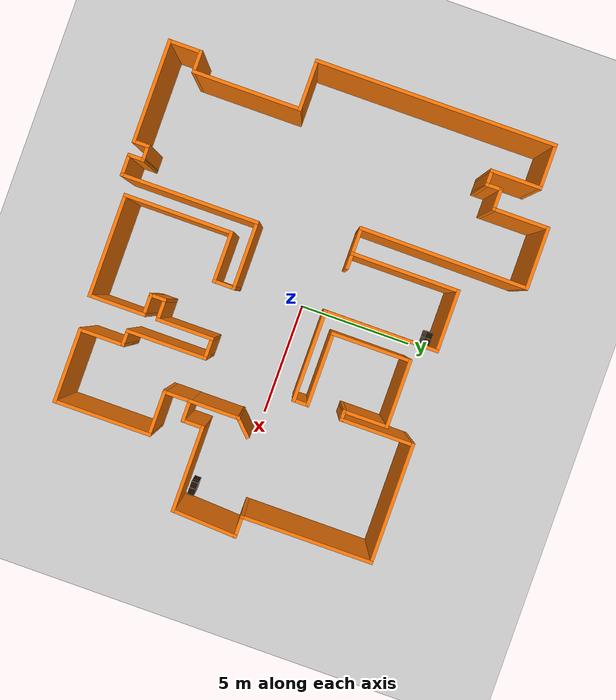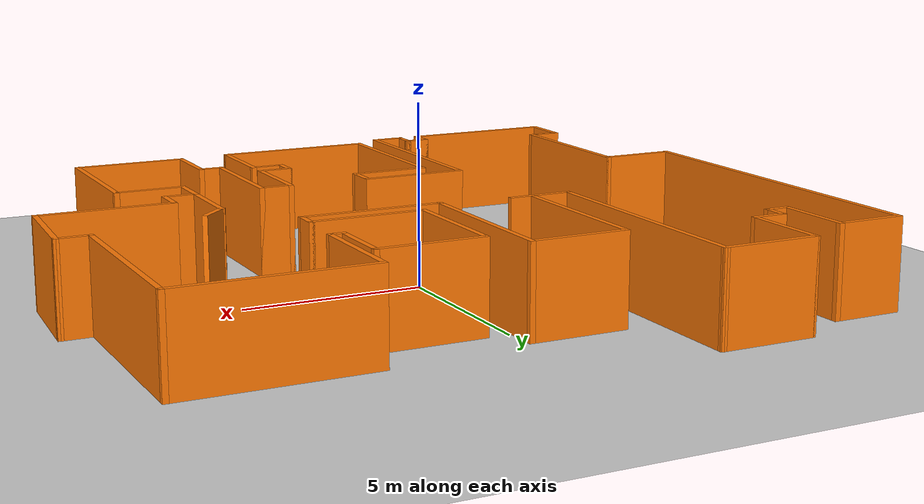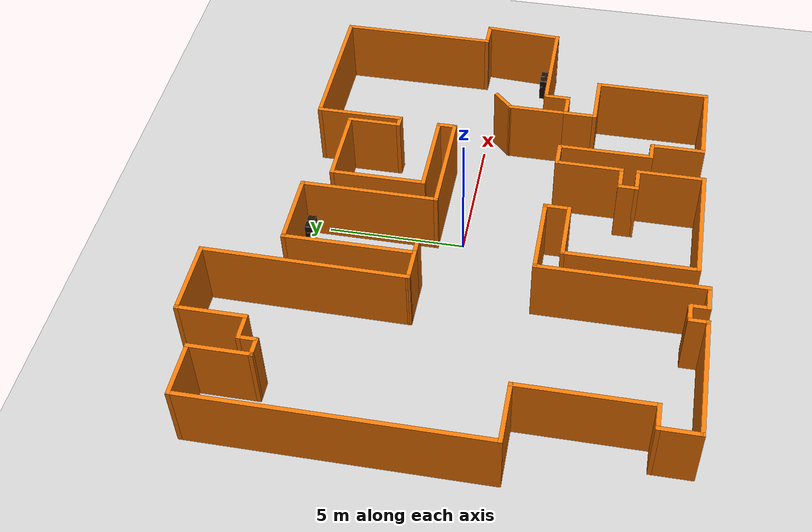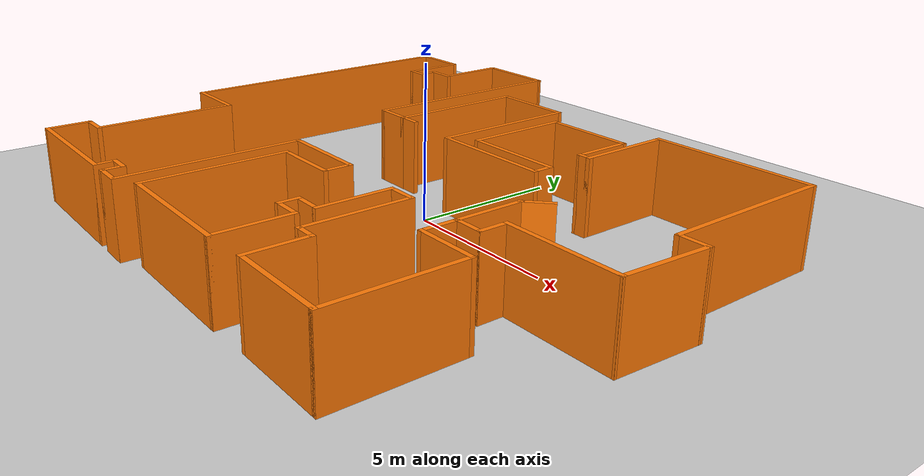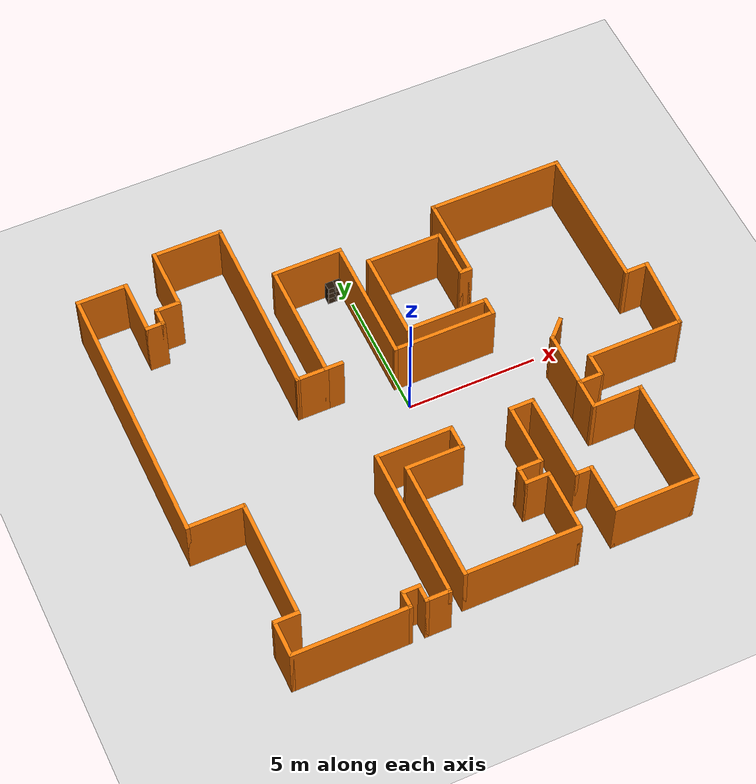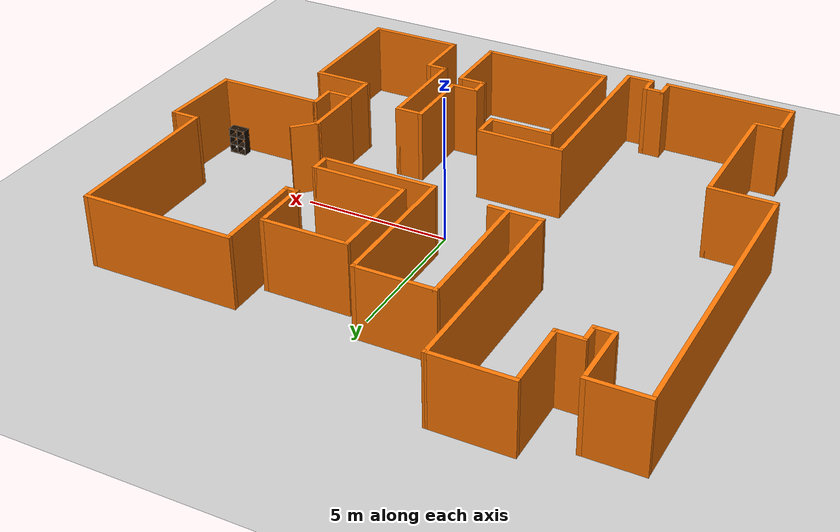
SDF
<sdf version="1.6">
 <world name="default">
  <light name="sun" type="directional">
   <pose>0 0 10 0 -0 0</pose>
   <diffuse>0.8 0.8 0.8 1</diffuse>
   <specular>0.2 0.2 0.2 1</specular>
   <attenuation>
    <range>1000</range>
    <constant>0.9</constant>
    <linear>0.01</linear>
    <quadratic>0.001</quadratic>
   </attenuation>
   <direction>-0.5 0.1 -0.9</direction>
  </light>
  <model name="ground_plane">
   <static>1</static>
   <link name="link">
    <collision name="collision">
     <geometry><plane><normal>0 0 1</normal><size>100 100</size></plane></geometry>
     <surface>
      <contact><collide_bitmask>65535</collide_bitmask></contact>
      <friction><ode><mu>100</mu><mu2>50</mu2></ode></friction>
     </surface>
    </collision>
    <visual name="visual">
     <cast_shadows>0</cast_shadows>
     <geometry><plane><normal>0 0 1</normal><size>100 100</size></plane></geometry>
     <material>
      <script><uri>file://media/materials/scripts/gazebo.material</uri><name>Gazebo/Grey</name></script>
     </material>
    </visual>
   </link>
  </model>
  <gravity>0 0 -9.8</gravity>
  <magnetic_field>6e-06 2.3e-05 -4.2e-05</magnetic_field>
  <atmosphere type="adiabatic"/>
  <physics name="default_physics" default="0" type="ode">
   <max_step_size>0.001</max_step_size>
   <real_time_factor>1</real_time_factor>
   <real_time_update_rate>1000</real_time_update_rate>
  </physics>
  <scene><ambient>0.4 0.4 0.4 1</ambient><background>0.7 0.7 0.7 1</background><shadows>1</shadows></scene>
  <audio><device>default</device></audio>
  <spherical_coordinates>
   <surface_model>EARTH_WGS84</surface_model>
   <latitude_deg>0</latitude_deg>
   <longitude_deg>0</longitude_deg>
   <elevation>0</elevation>
   <heading_deg>0</heading_deg>
  </spherical_coordinates>
  <model name="map_126">
   <pose>0.039497 -0.148773 0 0 -0 0</pose>
   <link name="Wall_10">
    <collision name="Wall_10_Collision">
     <geometry><box><size>2.75 0.15 2.5</size></box></geometry>
     <pose>0 0 1.25 0 -0 0</pose>
    </collision>
    <visual name="Wall_10_Visual">
     <pose>0 0 1.25 0 -0 0</pose>
     <geometry><box><size>2.75 0.15 2.5</size></box></geometry>
     <material>
      <script><uri>file://media/materials/scripts/gazebo.material</uri><name>Gazebo/Grey</name></script>
      <ambient>0.996078 0.47451 0.0196078 1</ambient>
     </material>
     <meta><layer>0</layer></meta>
    </visual>
    <pose>-5.12699 8.57474 0 0 -0 0</pose>
   </link>
   <link name="Wall_12">
    <collision name="Wall_12_Collision">
     <geometry><box><size>2.5 0.15 2.5</size></box></geometry>
     <pose>0 0 1.25 0 -0 0</pose>
    </collision>
    <visual name="Wall_12_Visual">
     <pose>0 0 1.25 0 -0 0</pose>
     <geometry><box><size>2.5 0.15 2.5</size></box></geometry>
     <material>
      <script><uri>file://media/materials/scripts/gazebo.material</uri><name>Gazebo/Grey</name></script>
      <ambient>0.996078 0.47451 0.0196078 1</ambient>
     </material>
     <meta><layer>0</layer></meta>
    </visual>
    <pose>-6.42699 7.39974 0 0 -0 -1.5708</pose>
   </link>
   <link name="Wall_13">
    <collision name="Wall_13_Collision">
     <geometry><box><size>1 0.15 2.5</size></box></geometry>
     <pose>0 0 1.25 0 -0 0</pose>
    </collision>
    <visual name="Wall_13_Visual">
     <pose>0 0 1.25 0 -0 0</pose>
     <geometry><box><size>1 0.15 2.5</size></box></geometry>
     <material>
      <script><uri>file://media/materials/scripts/gazebo.material</uri><name>Gazebo/Grey</name></script>
      <ambient>0.996078 0.47451 0.0196078 1</ambient>
     </material>
     <meta><layer>0</layer></meta>
    </visual>
    <pose>-6.85199 6.22474 0 0 -0 3.14159</pose>
   </link>
   <link name="Wall_14">
    <collision name="Wall_14_Collision">
     <geometry><box><size>0.75 0.15 2.5</size></box></geometry>
     <pose>0 0 1.25 0 -0 0</pose>
    </collision>
    <visual name="Wall_14_Visual">
     <pose>0 0 1.25 0 -0 0</pose>
     <geometry><box><size>0.75 0.15 2.5</size></box></geometry>
     <material>
      <script><uri>file://media/materials/scripts/gazebo.material</uri><name>Gazebo/Grey</name></script>
      <ambient>0.996078 0.47451 0.0196078 1</ambient>
     </material>
     <meta><layer>0</layer></meta>
    </visual>
    <pose>-7.27699 5.92474 0 0 -0 -1.5708</pose>
   </link>
   <link name="Wall_15">
    <collision name="Wall_15_Collision">
     <geometry><box><size>0.75 0.15 2.5</size></box></geometry>
     <pose>0 0 1.25 0 -0 0</pose>
    </collision>
    <visual name="Wall_15_Visual">
     <pose>0 0 1.25 0 -0 0</pose>
     <geometry><box><size>0.75 0.15 2.5</size></box></geometry>
     <material>
      <script><uri>file://media/materials/scripts/gazebo.material</uri><name>Gazebo/Grey</name></script>
      <ambient>0.996078 0.47451 0.0196078 1</ambient>
     </material>
     <meta><layer>0</layer></meta>
    </visual>
    <pose>-7.57699 5.62474 0 0 -0 3.14159</pose>
   </link>
   <link name="Wall_16">
    <collision name="Wall_16_Collision">
     <geometry><box><size>2.25 0.15 2.5</size></box></geometry>
     <pose>0 0 1.25 0 -0 0</pose>
    </collision>
    <visual name="Wall_16_Visual">
     <pose>0 0 1.25 0 -0 0</pose>
     <geometry><box><size>2.25 0.15 2.5</size></box></geometry>
     <material>
      <script><uri>file://media/materials/scripts/gazebo.material</uri><name>Gazebo/Grey</name></script>
      <ambient>0.996078 0.47451 0.0196078 1</ambient>
     </material>
     <meta><layer>0</layer></meta>
    </visual>
    <pose>-7.87699 6.67474 0 0 -0 1.5708</pose>
   </link>
   <link name="Wall_17">
    <collision name="Wall_17_Collision">
     <geometry><box><size>2 0.15 2.5</size></box></geometry>
     <pose>0 0 1.25 0 -0 0</pose>
    </collision>
    <visual name="Wall_17_Visual">
     <pose>0 0 1.25 0 -0 0</pose>
     <geometry><box><size>2 0.15 2.5</size></box></geometry>
     <material>
      <script><uri>file://media/materials/scripts/gazebo.material</uri><name>Gazebo/Grey</name></script>
      <ambient>0.996078 0.47451 0.0196078 1</ambient>
     </material>
     <meta><layer>0</layer></meta>
    </visual>
    <pose>-8.80199 7.72474 0 0 -0 3.14159</pose>
   </link>
   <link name="Wall_18">
    <collision name="Wall_18_Collision">
     <geometry><box><size>10.5 0.15 2.5</size></box></geometry>
     <pose>0 0 1.25 0 -0 0</pose>
    </collision>
    <visual name="Wall_18_Visual">
     <pose>0 0 1.25 0 -0 0</pose>
     <geometry><box><size>10.5 0.15 2.5</size></box></geometry>
     <material>
      <script><uri>file://media/materials/scripts/gazebo.material</uri><name>Gazebo/Grey</name></script>
      <ambient>0.996078 0.47451 0.0196078 1</ambient>
     </material>
     <meta><layer>0</layer></meta>
    </visual>
    <pose>-9.72699 2.54974 0 0 -0 -1.5708</pose>
   </link>
   <link name="Wall_19">
    <collision name="Wall_19_Collision">
     <geometry><box><size>2.25 0.15 2.5</size></box></geometry>
     <pose>0 0 1.25 0 -0 0</pose>
    </collision>
    <visual name="Wall_19_Visual">
     <pose>0 0 1.25 0 -0 0</pose>
     <geometry><box><size>2.25 0.15 2.5</size></box></geometry>
     <material>
      <script><uri>file://media/materials/scripts/gazebo.material</uri><name>Gazebo/Grey</name></script>
      <ambient>0.996078 0.47451 0.0196078 1</ambient>
     </material>
     <meta><layer>0</layer></meta>
    </visual>
    <pose>-8.67699 -2.62526 0 0 -0 0</pose>
   </link>
   <link name="Wall_20">
    <collision name="Wall_20_Collision">
     <geometry><box><size>4.75 0.15 2.5</size></box></geometry>
     <pose>0 0 1.25 0 -0 0</pose>
    </collision>
    <visual name="Wall_20_Visual">
     <pose>0 0 1.25 0 -0 0</pose>
     <geometry><box><size>4.75 0.15 2.5</size></box></geometry>
     <material>
      <script><uri>file://media/materials/scripts/gazebo.material</uri><name>Gazebo/Grey</name></script>
      <ambient>0.996078 0.47451 0.0196078 1</ambient>
     </material>
     <meta><layer>0</layer></meta>
    </visual>
    <pose>-7.62699 -4.92526 0 0 -0 -1.5708</pose>
   </link>
   <link name="Wall_21">
    <collision name="Wall_21_Collision">
     <geometry><box><size>1 0.15 2.5</size></box></geometry>
     <pose>0 0 1.25 0 -0 0</pose>
    </collision>
    <visual name="Wall_21_Visual">
     <pose>0 0 1.25 0 -0 0</pose>
     <geometry><box><size>1 0.15 2.5</size></box></geometry>
     <material>
      <script><uri>file://media/materials/scripts/gazebo.material</uri><name>Gazebo/Grey</name></script>
      <ambient>0.996078 0.47451 0.0196078 1</ambient>
     </material>
     <meta><layer>0</layer></meta>
    </visual>
    <pose>-8.05199 -7.22526 0 0 -0 3.14159</pose>
   </link>
   <link name="Wall_22">
    <collision name="Wall_22_Collision">
     <geometry><box><size>1.5 0.15 2.5</size></box></geometry>
     <pose>0 0 1.25 0 -0 0</pose>
    </collision>
    <visual name="Wall_22_Visual">
     <pose>0 0 1.25 0 -0 0</pose>
     <geometry><box><size>1.5 0.15 2.5</size></box></geometry>
     <material>
      <script><uri>file://media/materials/scripts/gazebo.material</uri><name>Gazebo/Grey</name></script>
      <ambient>0.996078 0.47451 0.0196078 1</ambient>
     </material>
     <meta><layer>0</layer></meta>
    </visual>
    <pose>-8.47699 -7.90026 0 0 -0 -1.5708</pose>
   </link>
   <link name="Wall_23">
    <collision name="Wall_23_Collision">
     <geometry><box><size>4.5 0.15 2.5</size></box></geometry>
     <pose>0 0 1.25 0 -0 0</pose>
    </collision>
    <visual name="Wall_23_Visual">
     <pose>0 0 1.25 0 -0 0</pose>
     <geometry><box><size>4.5 0.15 2.5</size></box></geometry>
     <material>
      <script><uri>file://media/materials/scripts/gazebo.material</uri><name>Gazebo/Grey</name></script>
      <ambient>0.996078 0.47451 0.0196078 1</ambient>
     </material>
     <meta><layer>0</layer></meta>
    </visual>
    <pose>-6.30199 -8.57526 0 0 -0 0</pose>
   </link>
   <link name="Wall_24">
    <collision name="Wall_24_Collision">
     <geometry><box><size>0.75 0.15 2.5</size></box></geometry>
     <pose>0 0 1.25 0 -0 0</pose>
    </collision>
    <visual name="Wall_24_Visual">
     <pose>0 0 1.25 0 -0 0</pose>
     <geometry><box><size>0.75 0.15 2.5</size></box></geometry>
     <material>
      <script><uri>file://media/materials/scripts/gazebo.material</uri><name>Gazebo/Grey</name></script>
      <ambient>0.996078 0.47451 0.0196078 1</ambient>
     </material>
     <meta><layer>0</layer></meta>
    </visual>
    <pose>-4.12699 -8.27526 0 0 -0 1.5708</pose>
   </link>
   <link name="Wall_25">
    <collision name="Wall_25_Collision">
     <geometry><box><size>0.75 0.15 2.5</size></box></geometry>
     <pose>0 0 1.25 0 -0 0</pose>
    </collision>
    <visual name="Wall_25_Visual">
     <pose>0 0 1.25 0 -0 0</pose>
     <geometry><box><size>0.75 0.15 2.5</size></box></geometry>
     <material>
      <script><uri>file://media/materials/scripts/gazebo.material</uri><name>Gazebo/Grey</name></script>
      <ambient>0.996078 0.47451 0.0196078 1</ambient>
     </material>
     <meta><layer>0</layer></meta>
    </visual>
    <pose>-3.82699 -7.97526 0 0 -0 0</pose>
   </link>
   <link name="Wall_26">
    <collision name="Wall_26_Collision">
     <geometry><box><size>0.75 0.15 2.5</size></box></geometry>
     <pose>0 0 1.25 0 -0 0</pose>
    </collision>
    <visual name="Wall_26_Visual">
     <pose>0 0 1.25 0 -0 0</pose>
     <geometry><box><size>0.75 0.15 2.5</size></box></geometry>
     <material>
      <script><uri>file://media/materials/scripts/gazebo.material</uri><name>Gazebo/Grey</name></script>
      <ambient>0.996078 0.47451 0.0196078 1</ambient>
     </material>
     <meta><layer>0</layer></meta>
    </visual>
    <pose>-3.52699 -8.27526 0 0 -0 -1.5708</pose>
   </link>
   <link name="Wall_27">
    <collision name="Wall_27_Collision">
     <geometry><box><size>1 0.15 2.5</size></box></geometry>
     <pose>0 0 1.25 0 -0 0</pose>
    </collision>
    <visual name="Wall_27_Visual">
     <pose>0 0 1.25 0 -0 0</pose>
     <geometry><box><size>1 0.15 2.5</size></box></geometry>
     <material>
      <script><uri>file://media/materials/scripts/gazebo.material</uri><name>Gazebo/Grey</name></script>
      <ambient>0.996078 0.47451 0.0196078 1</ambient>
     </material>
     <meta><layer>0</layer></meta>
    </visual>
    <pose>-3.10199 -8.57526 0 0 -0 0</pose>
   </link>
   <link name="Wall_28">
    <collision name="Wall_28_Collision">
     <geometry><box><size>6 0.15 2.5</size></box></geometry>
     <pose>0 0 1.25 0 -0 0</pose>
    </collision>
    <visual name="Wall_28_Visual">
     <pose>0 0 1.25 0 -0 0</pose>
     <geometry><box><size>6 0.15 2.5</size></box></geometry>
     <material>
      <script><uri>file://media/materials/scripts/gazebo.material</uri><name>Gazebo/Grey</name></script>
      <ambient>0.996078 0.47451 0.0196078 1</ambient>
     </material>
     <meta><layer>0</layer></meta>
    </visual>
    <pose>-2.67699 -5.65026 0 0 -0 1.5708</pose>
   </link>
   <link name="Wall_29">
    <collision name="Wall_29_Collision">
     <geometry><box><size>3 0.15 2.5</size></box></geometry>
     <pose>0 0 1.25 0 -0 0</pose>
    </collision>
    <visual name="Wall_29_Visual">
     <pose>0 0 1.25 0 -0 0</pose>
     <geometry><box><size>3 0.15 2.5</size></box></geometry>
     <material>
      <script><uri>file://media/materials/scripts/gazebo.material</uri><name>Gazebo/Grey</name></script>
      <ambient>0.996078 0.47451 0.0196078 1</ambient>
     </material>
     <meta><layer>0</layer></meta>
    </visual>
    <pose>-1.25199 -2.72526 0 0 -0 0</pose>
   </link>
   <link name="Wall_30">
    <collision name="Wall_30_Collision">
     <geometry><box><size>1 0.15 2.5</size></box></geometry>
     <pose>0 0 1.25 0 -0 0</pose>
    </collision>
    <visual name="Wall_30_Visual">
     <pose>0 0 1.25 0 -0 0</pose>
     <geometry><box><size>1 0.15 2.5</size></box></geometry>
     <material>
      <script><uri>file://media/materials/scripts/gazebo.material</uri><name>Gazebo/Grey</name></script>
      <ambient>0.996078 0.47451 0.0196078 1</ambient>
     </material>
     <meta><layer>0</layer></meta>
    </visual>
    <pose>0.173014 -3.15026 0 0 -0 -1.5708</pose>
   </link>
   <link name="Wall_31">
    <collision name="Wall_31_Collision">
     <geometry><box><size>2.25 0.15 2.5</size></box></geometry>
     <pose>0 0 1.25 0 -0 0</pose>
    </collision>
    <visual name="Wall_31_Visual">
     <pose>0 0 1.25 0 -0 0</pose>
     <geometry><box><size>2.25 0.15 2.5</size></box></geometry>
     <material>
      <script><uri>file://media/materials/scripts/gazebo.material</uri><name>Gazebo/Grey</name></script>
      <ambient>0.996078 0.47451 0.0196078 1</ambient>
     </material>
     <meta><layer>0</layer></meta>
    </visual>
    <pose>-0.876986 -3.57526 0 0 -0 3.14159</pose>
   </link>
   <link name="Wall_32">
    <collision name="Wall_32_Collision">
     <geometry><box><size>4.75 0.15 2.5</size></box></geometry>
     <pose>0 0 1.25 0 -0 0</pose>
    </collision>
    <visual name="Wall_32_Visual">
     <pose>0 0 1.25 0 -0 0</pose>
     <geometry><box><size>4.75 0.15 2.5</size></box></geometry>
     <material>
      <script><uri>file://media/materials/scripts/gazebo.material</uri><name>Gazebo/Grey</name></script>
      <ambient>0.996078 0.47451 0.0196078 1</ambient>
     </material>
     <meta><layer>0</layer></meta>
    </visual>
    <pose>-1.92699 -5.87526 0 0 -0 -1.5708</pose>
   </link>
   <link name="Wall_33">
    <collision name="Wall_33_Collision">
     <geometry><box><size>4.5 0.15 2.5</size></box></geometry>
     <pose>0 0 1.25 0 -0 0</pose>
    </collision>
    <visual name="Wall_33_Visual">
     <pose>0 0 1.25 0 -0 0</pose>
     <geometry><box><size>4.5 0.15 2.5</size></box></geometry>
     <material>
      <script><uri>file://media/materials/scripts/gazebo.material</uri><name>Gazebo/Grey</name></script>
      <ambient>0.996078 0.47451 0.0196078 1</ambient>
     </material>
     <meta><layer>0</layer></meta>
    </visual>
    <pose>0.248014 -8.17526 0 0 -0 0</pose>
   </link>
   <link name="Wall_34">
    <collision name="Wall_34_Collision">
     <geometry><box><size>2.5 0.15 2.5</size></box></geometry>
     <pose>0 0 1.25 0 -0 0</pose>
    </collision>
    <visual name="Wall_34_Visual">
     <pose>0 0 1.25 0 -0 0</pose>
     <geometry><box><size>2.5 0.15 2.5</size></box></geometry>
     <material>
      <script><uri>file://media/materials/scripts/gazebo.material</uri><name>Gazebo/Grey</name></script>
      <ambient>0.996078 0.47451 0.0196078 1</ambient>
     </material>
     <meta><layer>0</layer></meta>
    </visual>
    <pose>2.42301 -7.00026 0 0 -0 1.5708</pose>
   </link>
   <link name="Wall_35">
    <collision name="Wall_35_Collision">
     <geometry><box><size>1 0.15 2.5</size></box></geometry>
     <pose>0 0 1.25 0 -0 0</pose>
    </collision>
    <visual name="Wall_35_Visual">
     <pose>0 0 1.25 0 -0 0</pose>
     <geometry><box><size>1 0.15 2.5</size></box></geometry>
     <material>
      <script><uri>file://media/materials/scripts/gazebo.material</uri><name>Gazebo/Grey</name></script>
      <ambient>0.996078 0.47451 0.0196078 1</ambient>
     </material>
     <meta><layer>0</layer></meta>
    </visual>
    <pose>1.99801 -5.82526 0 0 -0 3.14159</pose>
   </link>
   <link name="Wall_36">
    <collision name="Wall_36_Collision">
     <geometry><box><size>0.75 0.15 2.5</size></box></geometry>
     <pose>0 0 1.25 0 -0 0</pose>
    </collision>
    <visual name="Wall_36_Visual">
     <pose>0 0 1.25 0 -0 0</pose>
     <geometry><box><size>0.75 0.15 2.5</size></box></geometry>
     <material>
      <script><uri>file://media/materials/scripts/gazebo.material</uri><name>Gazebo/Grey</name></script>
      <ambient>0.996078 0.47451 0.0196078 1</ambient>
     </material>
     <meta><layer>0</layer></meta>
    </visual>
    <pose>1.57301 -5.52526 0 0 -0 1.5708</pose>
   </link>
   <link name="Wall_37">
    <collision name="Wall_37_Collision">
     <geometry><box><size>1 0.15 2.5</size></box></geometry>
     <pose>0 0 1.25 0 -0 0</pose>
    </collision>
    <visual name="Wall_37_Visual">
     <pose>0 0 1.25 0 -0 0</pose>
     <geometry><box><size>1 0.15 2.5</size></box></geometry>
     <material>
      <script><uri>file://media/materials/scripts/gazebo.material</uri><name>Gazebo/Grey</name></script>
      <ambient>0.996078 0.47451 0.0196078 1</ambient>
     </material>
     <meta><layer>0</layer></meta>
    </visual>
    <pose>1.99801 -5.22526 0 0 -0 0</pose>
   </link>
   <link name="Wall_38">
    <collision name="Wall_38_Collision">
     <geometry><box><size>2.5 0.15 2.5</size></box></geometry>
     <pose>0 0 1.25 0 -0 0</pose>
    </collision>
    <visual name="Wall_38_Visual">
     <pose>0 0 1.25 0 -0 0</pose>
     <geometry><box><size>2.5 0.15 2.5</size></box></geometry>
     <material>
      <script><uri>file://media/materials/scripts/gazebo.material</uri><name>Gazebo/Grey</name></script>
      <ambient>0.996078 0.47451 0.0196078 1</ambient>
     </material>
     <meta><layer>0</layer></meta>
    </visual>
    <pose>2.42301 -4.05026 0 0 -0 1.5708</pose>
   </link>
   <link name="Wall_39">
    <collision name="Wall_39_Collision">
     <geometry><box><size>1 0.15 2.5</size></box></geometry>
     <pose>0 0 1.25 0 -0 0</pose>
    </collision>
    <visual name="Wall_39_Visual">
     <pose>0 0 1.25 0 -0 0</pose>
     <geometry><box><size>1 0.15 2.5</size></box></geometry>
     <material>
      <script><uri>file://media/materials/scripts/gazebo.material</uri><name>Gazebo/Grey</name></script>
      <ambient>0.996078 0.47451 0.0196078 1</ambient>
     </material>
     <meta><layer>0</layer></meta>
    </visual>
    <pose>2.84801 -2.87526 0 0 -0 0</pose>
   </link>
   <link name="Wall_40">
    <collision name="Wall_40_Collision">
     <geometry><box><size>3.5 0.15 2.5</size></box></geometry>
     <pose>0 0 1.25 0 -0 0</pose>
    </collision>
    <visual name="Wall_40_Visual">
     <pose>0 0 1.25 0 -0 0</pose>
     <geometry><box><size>3.5 0.15 2.5</size></box></geometry>
     <material>
      <script><uri>file://media/materials/scripts/gazebo.material</uri><name>Gazebo/Grey</name></script>
      <ambient>0.996078 0.47451 0.0196078 1</ambient>
     </material>
     <meta><layer>0</layer></meta>
    </visual>
    <pose>3.27301 -4.55026 0 0 -0 -1.5708</pose>
   </link>
   <link name="Wall_41">
    <collision name="Wall_41_Collision">
     <geometry><box><size>0.75 0.15 2.5</size></box></geometry>
     <pose>0 0 1.25 0 -0 0</pose>
    </collision>
    <visual name="Wall_41_Visual">
     <pose>0 0 1.25 0 -0 0</pose>
     <geometry><box><size>0.75 0.15 2.5</size></box></geometry>
     <material>
      <script><uri>file://media/materials/scripts/gazebo.material</uri><name>Gazebo/Grey</name></script>
      <ambient>0.996078 0.47451 0.0196078 1</ambient>
     </material>
     <meta><layer>0</layer></meta>
    </visual>
    <pose>3.57301 -6.22526 0 0 -0 0</pose>
   </link>
   <link name="Wall_42">
    <collision name="Wall_42_Collision">
     <geometry><box><size>2 0.15 2.5</size></box></geometry>
     <pose>0 0 1.25 0 -0 0</pose>
    </collision>
    <visual name="Wall_42_Visual">
     <pose>0 0 1.25 0 -0 0</pose>
     <geometry><box><size>2 0.15 2.5</size></box></geometry>
     <material>
      <script><uri>file://media/materials/scripts/gazebo.material</uri><name>Gazebo/Grey</name></script>
      <ambient>0.996078 0.47451 0.0196078 1</ambient>
     </material>
     <meta><layer>0</layer></meta>
    </visual>
    <pose>3.87301 -7.15026 0 0 -0 -1.5708</pose>
   </link>
   <link name="Wall_43">
    <collision name="Wall_43_Collision">
     <geometry><box><size>3.25 0.15 2.5</size></box></geometry>
     <pose>0 0 1.25 0 -0 0</pose>
    </collision>
    <visual name="Wall_43_Visual">
     <pose>0 0 1.25 0 -0 0</pose>
     <geometry><box><size>3.25 0.15 2.5</size></box></geometry>
     <material>
      <script><uri>file://media/materials/scripts/gazebo.material</uri><name>Gazebo/Grey</name></script>
      <ambient>0.996078 0.47451 0.0196078 1</ambient>
     </material>
     <meta><layer>0</layer></meta>
    </visual>
    <pose>5.42301 -8.07526 0 0 -0 0</pose>
   </link>
   <link name="Wall_44">
    <collision name="Wall_44_Collision">
     <geometry><box><size>4.25 0.15 2.5</size></box></geometry>
     <pose>0 0 1.25 0 -0 0</pose>
    </collision>
    <visual name="Wall_44_Visual">
     <pose>0 0 1.25 0 -0 0</pose>
     <geometry><box><size>4.25 0.15 2.5</size></box></geometry>
     <material>
      <script><uri>file://media/materials/scripts/gazebo.material</uri><name>Gazebo/Grey</name></script>
      <ambient>0.996078 0.47451 0.0196078 1</ambient>
     </material>
     <meta><layer>0</layer></meta>
    </visual>
    <pose>6.97301 -6.02526 0 0 -0 1.5708</pose>
   </link>
   <link name="Wall_45">
    <collision name="Wall_45_Collision">
     <geometry><box><size>2 0.15 2.5</size></box></geometry>
     <pose>0 0 1.25 0 -0 0</pose>
    </collision>
    <visual name="Wall_45_Visual">
     <pose>0 0 1.25 0 -0 0</pose>
     <geometry><box><size>2 0.15 2.5</size></box></geometry>
     <material>
      <script><uri>file://media/materials/scripts/gazebo.material</uri><name>Gazebo/Grey</name></script>
      <ambient>0.996078 0.47451 0.0196078 1</ambient>
     </material>
     <meta><layer>0</layer></meta>
    </visual>
    <pose>6.04801 -3.97526 0 0 -0 3.14159</pose>
   </link>
   <link name="Wall_46">
    <collision name="Wall_46_Collision">
     <geometry><box><size>1.25 0.15 2.5</size></box></geometry>
     <pose>0 0 1.25 0 -0 0</pose>
    </collision>
    <visual name="Wall_46_Visual">
     <pose>0 0 1.25 0 -0 0</pose>
     <geometry><box><size>1.25 0.15 2.5</size></box></geometry>
     <material>
      <script><uri>file://media/materials/scripts/gazebo.material</uri><name>Gazebo/Grey</name></script>
      <ambient>0.996078 0.47451 0.0196078 1</ambient>
     </material>
     <meta><layer>0</layer></meta>
    </visual>
    <pose>5.12301 -3.42526 0 0 -0 1.5708</pose>
   </link>
   <link name="Wall_49">
    <collision name="Wall_49_Collision">
     <geometry><box><size>1 0.15 2.5</size></box></geometry>
     <pose>0 0 1.25 0 -0 0</pose>
    </collision>
    <visual name="Wall_49_Visual">
     <pose>0 0 1.25 0 -0 0</pose>
     <geometry><box><size>1 0.15 2.5</size></box></geometry>
     <material>
      <script><uri>file://media/materials/scripts/gazebo.material</uri><name>Gazebo/Grey</name></script>
      <ambient>0.996078 0.47451 0.0196078 1</ambient>
     </material>
     <meta><layer>0</layer></meta>
    </visual>
    <pose>9.29801 0.724741 0 0 -0 3.14159</pose>
   </link>
   <link name="Wall_62">
    <collision name="Wall_62_Collision">
     <geometry><box><size>5.75 0.15 2.5</size></box></geometry>
     <pose>0 0 1.25 0 -0 0</pose>
    </collision>
    <visual name="Wall_62_Visual">
     <pose>0 0 1.25 0 -0 0</pose>
     <geometry><box><size>5.75 0.15 2.5</size></box></geometry>
     <material>
      <script><uri>file://media/materials/scripts/gazebo.material</uri><name>Gazebo/Grey</name></script>
      <ambient>0.996078 0.47451 0.0196078 1</ambient>
     </material>
     <meta><layer>0</layer></meta>
    </visual>
    <pose>8.87301 3.52474 0 0 -0 1.5708</pose>
   </link>
   <link name="Wall_63">
    <collision name="Wall_63_Collision">
     <geometry><box><size>5.25 0.15 2.5</size></box></geometry>
     <pose>0 0 1.25 0 -0 0</pose>
    </collision>
    <visual name="Wall_63_Visual">
     <pose>0 0 1.25 0 -0 0</pose>
     <geometry><box><size>5.25 0.15 2.5</size></box></geometry>
     <material>
      <script><uri>file://media/materials/scripts/gazebo.material</uri><name>Gazebo/Grey</name></script>
      <ambient>0.996078 0.47451 0.0196078 1</ambient>
     </material>
     <meta><layer>0</layer></meta>
    </visual>
    <pose>6.32301 6.32474 0 0 -0 3.14159</pose>
   </link>
   <link name="Wall_64">
    <collision name="Wall_64_Collision">
     <geometry><box><size>3.25 0.15 2.5</size></box></geometry>
     <pose>0 0 1.25 0 -0 0</pose>
    </collision>
    <visual name="Wall_64_Visual">
     <pose>0 0 1.25 0 -0 0</pose>
     <geometry><box><size>3.25 0.15 2.5</size></box></geometry>
     <material>
      <script><uri>file://media/materials/scripts/gazebo.material</uri><name>Gazebo/Grey</name></script>
      <ambient>0.996078 0.47451 0.0196078 1</ambient>
     </material>
     <meta><layer>0</layer></meta>
    </visual>
    <pose>3.77301 4.77474 0 0 -0 -1.5708</pose>
   </link>
   <link name="Wall_65">
    <collision name="Wall_65_Collision">
     <geometry><box><size>0.5 0.15 2.5</size></box></geometry>
     <pose>0 0 1.25 0 -0 0</pose>
    </collision>
    <visual name="Wall_65_Visual">
     <pose>0 0 1.25 0 -0 0</pose>
     <geometry><box><size>0.5 0.15 2.5</size></box></geometry>
     <material>
      <script><uri>file://media/materials/scripts/gazebo.material</uri><name>Gazebo/Grey</name></script>
      <ambient>0.996078 0.47451 0.0196078 1</ambient>
     </material>
     <meta><layer>0</layer></meta>
    </visual>
    <pose>3.59801 3.22474 0 0 -0 3.14159</pose>
   </link>
   <link name="Wall_66">
    <collision name="Wall_66_Collision">
     <geometry><box><size>2 0.15 2.5</size></box></geometry>
     <pose>0 0 1.25 0 -0 0</pose>
    </collision>
    <visual name="Wall_66_Visual">
     <pose>0 0 1.25 0 -0 0</pose>
     <geometry><box><size>2 0.15 2.5</size></box></geometry>
     <material>
      <script><uri>file://media/materials/scripts/gazebo.material</uri><name>Gazebo/Grey</name></script>
      <ambient>0.996078 0.47451 0.0196078 1</ambient>
     </material>
     <meta><layer>0</layer></meta>
    </visual>
    <pose>3.42301 4.14974 0 0 -0 1.5708</pose>
   </link>
   <link name="Wall_67">
    <collision name="Wall_67_Collision">
     <geometry><box><size>3 0.15 2.5</size></box></geometry>
     <pose>0 0 1.25 0 -0 0</pose>
    </collision>
    <visual name="Wall_67_Visual">
     <pose>0 0 1.25 0 -0 0</pose>
     <geometry><box><size>3 0.15 2.5</size></box></geometry>
     <material>
      <script><uri>file://media/materials/scripts/gazebo.material</uri><name>Gazebo/Grey</name></script>
      <ambient>0.996078 0.47451 0.0196078 1</ambient>
     </material>
     <meta><layer>0</layer></meta>
    </visual>
    <pose>1.99801 5.07474 0 0 -0 3.14159</pose>
   </link>
   <link name="Wall_68">
    <collision name="Wall_68_Collision">
     <geometry><box><size>3.5 0.15 2.5</size></box></geometry>
     <pose>0 0 1.25 0 -0 0</pose>
    </collision>
    <visual name="Wall_68_Visual">
     <pose>0 0 1.25 0 -0 0</pose>
     <geometry><box><size>3.5 0.15 2.5</size></box></geometry>
     <material>
      <script><uri>file://media/materials/scripts/gazebo.material</uri><name>Gazebo/Grey</name></script>
      <ambient>0.996078 0.47451 0.0196078 1</ambient>
     </material>
     <meta><layer>0</layer></meta>
    </visual>
    <pose>0.573014 3.39974 0 0 -0 -1.5708</pose>
   </link>
   <link name="Wall_69">
    <collision name="Wall_69_Collision">
     <geometry><box><size>3.25 0.15 2.5</size></box></geometry>
     <pose>0 0 1.25 0 -0 0</pose>
    </collision>
    <visual name="Wall_69_Visual">
     <pose>0 0 1.25 0 -0 0</pose>
     <geometry><box><size>3.25 0.15 2.5</size></box></geometry>
     <material>
      <script><uri>file://media/materials/scripts/gazebo.material</uri><name>Gazebo/Grey</name></script>
      <ambient>0.996078 0.47451 0.0196078 1</ambient>
     </material>
     <meta><layer>0</layer></meta>
    </visual>
    <pose>2.12301 1.72474 0 0 -0 0</pose>
   </link>
   <link name="Wall_70">
    <collision name="Wall_70_Collision">
     <geometry><box><size>0.75 0.15 2.5</size></box></geometry>
     <pose>0 0 1.25 0 -0 0</pose>
    </collision>
    <visual name="Wall_70_Visual">
     <pose>0 0 1.25 0 -0 0</pose>
     <geometry><box><size>0.75 0.15 2.5</size></box></geometry>
     <material>
      <script><uri>file://media/materials/scripts/gazebo.material</uri><name>Gazebo/Grey</name></script>
      <ambient>0.996078 0.47451 0.0196078 1</ambient>
     </material>
     <meta><layer>0</layer></meta>
    </visual>
    <pose>3.67301 1.42474 0 0 -0 -1.5708</pose>
   </link>
   <link name="Wall_71">
    <collision name="Wall_71_Collision">
     <geometry><box><size>4 0.15 2.5</size></box></geometry>
     <pose>0 0 1.25 0 -0 0</pose>
    </collision>
    <visual name="Wall_71_Visual">
     <pose>0 0 1.25 0 -0 0</pose>
     <geometry><box><size>4 0.15 2.5</size></box></geometry>
     <material>
      <script><uri>file://media/materials/scripts/gazebo.material</uri><name>Gazebo/Grey</name></script>
      <ambient>0.996078 0.47451 0.0196078 1</ambient>
     </material>
     <meta><layer>0</layer></meta>
    </visual>
    <pose>1.74801 1.12474 0 0 -0 3.14159</pose>
   </link>
   <link name="Wall_72">
    <collision name="Wall_72_Collision">
     <geometry><box><size>5 0.15 2.5</size></box></geometry>
     <pose>0 0 1.25 0 -0 0</pose>
    </collision>
    <visual name="Wall_72_Visual">
     <pose>0 0 1.25 0 -0 0</pose>
     <geometry><box><size>5 0.15 2.5</size></box></geometry>
     <material>
      <script><uri>file://media/materials/scripts/gazebo.material</uri><name>Gazebo/Grey</name></script>
      <ambient>0.996078 0.47451 0.0196078 1</ambient>
     </material>
     <meta><layer>0</layer></meta>
    </visual>
    <pose>-0.176986 3.54974 0 0 -0 1.5708</pose>
   </link>
   <link name="Wall_73">
    <collision name="Wall_73_Collision">
     <geometry><box><size>2.75 0.15 2.5</size></box></geometry>
     <pose>0 0 1.25 0 -0 0</pose>
    </collision>
    <visual name="Wall_73_Visual">
     <pose>0 0 1.25 0 -0 0</pose>
     <geometry><box><size>2.75 0.15 2.5</size></box></geometry>
     <material>
      <script><uri>file://media/materials/scripts/gazebo.material</uri><name>Gazebo/Grey</name></script>
      <ambient>0.996078 0.47451 0.0196078 1</ambient>
     </material>
     <meta><layer>0</layer></meta>
    </visual>
    <pose>-1.47699 5.97474 0 0 -0 3.14159</pose>
   </link>
   <link name="Wall_74">
    <collision name="Wall_74_Collision">
     <geometry><box><size>4.75 0.15 2.5</size></box></geometry>
     <pose>0 0 1.25 0 -0 0</pose>
    </collision>
    <visual name="Wall_74_Visual">
     <pose>0 0 1.25 0 -0 0</pose>
     <geometry><box><size>4.75 0.15 2.5</size></box></geometry>
     <material>
      <script><uri>file://media/materials/scripts/gazebo.material</uri><name>Gazebo/Grey</name></script>
      <ambient>0.996078 0.47451 0.0196078 1</ambient>
     </material>
     <meta><layer>0</layer></meta>
    </visual>
    <pose>-2.77699 3.67474 0 0 -0 -1.5708</pose>
   </link>
   <link name="Wall_75">
    <collision name="Wall_75_Collision">
     <geometry><box><size>1.25 0.15 2.5</size></box></geometry>
     <pose>0 0 1.25 0 -0 0</pose>
    </collision>
    <visual name="Wall_75_Visual">
     <pose>0 0 1.25 0 -0 0</pose>
     <geometry><box><size>1.25 0.15 2.5</size></box></geometry>
     <material>
      <script><uri>file://media/materials/scripts/gazebo.material</uri><name>Gazebo/Grey</name></script>
      <ambient>0.996078 0.47451 0.0196078 1</ambient>
     </material>
     <meta><layer>0</layer></meta>
    </visual>
    <pose>-3.32699 1.37474 0 0 -0 3.14159</pose>
   </link>
   <link name="Wall_76">
    <collision name="Wall_76_Collision">
     <geometry><box><size>7.35017 0.15 2.5</size></box></geometry>
     <pose>0 0 1.25 0 -0 0</pose>
    </collision>
    <visual name="Wall_76_Visual">
     <pose>0 0 1.25 0 -0 0</pose>
     <geometry><box><size>7.35017 0.15 2.5</size></box></geometry>
     <material>
      <script><uri>file://media/materials/scripts/gazebo.material</uri><name>Gazebo/Grey</name></script>
      <ambient>0.996078 0.47451 0.0196078 1</ambient>
     </material>
     <meta><layer>0</layer></meta>
    </visual>
    <pose>-3.85199 4.97474 0 0 -0 1.56385</pose>
   </link>
   <link name="Wall_78">
    <collision name="Wall_78_Collision">
     <geometry><box><size>0.75 0.15 2.5</size></box></geometry>
     <pose>0 0 1.25 0 -0 0</pose>
    </collision>
    <visual name="Wall_78_Visual">
     <pose>0 0 1.25 0 -0 0</pose>
     <geometry><box><size>0.75 0.15 2.5</size></box></geometry>
     <material>
      <script><uri>file://media/materials/scripts/gazebo.material</uri><name>Gazebo/Grey</name></script>
      <ambient>0.996078 0.47451 0.0196078 1</ambient>
     </material>
     <meta><layer>0</layer></meta>
    </visual>
    <pose>-2.47699 1.37474 0 0 -0 0</pose>
   </link>
   <link name="Wall_80">
    <collision name="Wall_80_Collision">
     <geometry><box><size>1 0.15 2.5</size></box></geometry>
     <pose>0 0 1.25 0 -0 0</pose>
    </collision>
    <visual name="Wall_80_Visual">
     <pose>0 0 1.25 0 -0 0</pose>
     <geometry><box><size>1 0.15 2.5</size></box></geometry>
     <material>
      <script><uri>file://media/materials/scripts/gazebo.material</uri><name>Gazebo/Grey</name></script>
      <ambient>0.996078 0.47451 0.0196078 1</ambient>
     </material>
     <meta><layer>0</layer></meta>
    </visual>
    <pose>5.54801 -2.87526 0 0 -0 0</pose>
   </link>
   <link name="Wall_81">
    <collision name="Wall_81_Collision">
     <geometry><box><size>1 0.15 2.5</size></box></geometry>
     <pose>0 0 1.25 0 -0 0</pose>
    </collision>
    <visual name="Wall_81_Visual">
     <pose>0 0 1.25 0 -0 0</pose>
     <geometry><box><size>1 0.15 2.5</size></box></geometry>
     <material>
      <script><uri>file://media/materials/scripts/gazebo.material</uri><name>Gazebo/Grey</name></script>
      <ambient>0.996078 0.47451 0.0196078 1</ambient>
     </material>
     <meta><layer>0</layer></meta>
    </visual>
    <pose>5.97301 -2.45026 0 0 -0 1.5708</pose>
   </link>
   <link name="Wall_82">
    <collision name="Wall_82_Collision">
     <geometry><box><size>3.75 0.15 2.5</size></box></geometry>
     <pose>0 0 1.25 0 -0 0</pose>
    </collision>
    <visual name="Wall_82_Visual">
     <pose>0 0 1.25 0 -0 0</pose>
     <geometry><box><size>3.75 0.15 2.5</size></box></geometry>
     <material>
      <script><uri>file://media/materials/scripts/gazebo.material</uri><name>Gazebo/Grey</name></script>
      <ambient>0.996078 0.47451 0.0196078 1</ambient>
     </material>
     <meta><layer>0</layer></meta>
    </visual>
    <pose>7.77301 -2.02526 0 0 -0 0</pose>
   </link>
   <link name="Wall_84">
    <collision name="Wall_84_Collision">
     <geometry><box><size>2.90409 0.15 2.5</size></box></geometry>
     <pose>0 0 1.25 0 -0 0</pose>
    </collision>
    <visual name="Wall_84_Visual">
     <pose>0 0 1.25 0 -0 0</pose>
     <geometry><box><size>2.90409 0.15 2.5</size></box></geometry>
     <material>
      <script><uri>file://media/materials/scripts/gazebo.material</uri><name>Gazebo/Grey</name></script>
      <ambient>0.996078 0.47451 0.0196078 1</ambient>
     </material>
     <meta><layer>0</layer></meta>
    </visual>
    <pose>9.64801 -0.650259 0 0 -0 -1.62529</pose>
   </link>
   <link name="Wall_86">
    <collision name="Wall_86_Collision">
     <geometry><box><size>2.25 0.15 2.5</size></box></geometry>
     <pose>0 0 1.25 0 -0 0</pose>
    </collision>
    <visual name="Wall_86_Visual">
     <pose>0 0 1.25 0 -0 0</pose>
     <geometry><box><size>2.25 0.15 2.5</size></box></geometry>
     <material>
      <script><uri>file://media/materials/scripts/gazebo.material</uri><name>Gazebo/Grey</name></script>
      <ambient>0.996078 0.47451 0.0196078 1</ambient>
     </material>
     <meta><layer>0</layer></meta>
    </visual>
    <pose>5.12301 -1.82526 0 0 -0 1.5708</pose>
   </link>
   <link name="Wall_87">
    <collision name="Wall_87_Collision">
     <geometry><box><size>1 0.15 2.5</size></box></geometry>
     <pose>0 0 1.25 0 -0 0</pose>
    </collision>
    <visual name="Wall_87_Visual">
     <pose>0 0 1.25 0 -0 0</pose>
     <geometry><box><size>1 0.15 2.5</size></box></geometry>
     <material>
      <script><uri>file://media/materials/scripts/gazebo.material</uri><name>Gazebo/Grey</name></script>
      <ambient>0.996078 0.47451 0.0196078 1</ambient>
     </material>
     <meta><layer>0</layer></meta>
    </visual>
    <pose>5.42353 -0.474738 0 0 -0 0.785398</pose>
   </link>
   <static>1</static>
  </model>
  <model name="6_Cube_StorageE">
   <link name="Wall_0">
    <pose>0 0 0.01 0 -0 0</pose>
    <inertial>
     <mass>1.6201</mass>
     <inertia><ixx>0.0119</ixx><iyy>0.0631</iyy><izz>0.0513</izz><ixy>0</ixy><ixz>0</ixz><iyz>0</iyz></inertia>
    </inertial>
    <collision name="Wall_0_Collision"><geometry><box><size>0.616 0.296 0.02</size></box></geometry></collision>
    <visual name="Wall_0_Visual">
     <geometry><box><size>0.616 0.296 0.02</size></box></geometry>
     <material>
      <script><uri>file://media/materials/scripts/gazebo.material</uri><name>Gazebo/Grey</name></script>
      <ambient>0.105882 0.0509804 0 1</ambient>
     </material>
    </visual>
   </link>
   <joint name="0_2" type="fixed">
    <pose>-0.308 0 0 0 -0 0</pose>
    <parent>Wall_2</parent>
    <child>Wall_0</child>
    <axis>
     <xyz>1 0 0</xyz>
     <use_parent_model_frame>0</use_parent_model_frame>
     <limit><lower>-1e+16</lower><upper>1e+16</upper></limit>
    </axis>
   </joint>
   <joint name="0_12" type="fixed">
    <parent>Wall_12</parent>
    <child>Wall_0</child>
    <axis>
     <xyz>0 0 1</xyz>
     <use_parent_model_frame>0</use_parent_model_frame>
     <limit><lower>-1e+16</lower><upper>1e+16</upper></limit>
    </axis>
   </joint>
   <joint name="0_4" type="fixed">
    <pose>0.308 0 0 0 -0 0</pose>
    <parent>Wall_4</parent>
    <child>Wall_0</child>
    <axis>
     <xyz>1 0 0</xyz>
     <use_parent_model_frame>0</use_parent_model_frame>
     <limit><lower>-1e+16</lower><upper>1e+16</upper></limit>
    </axis>
   </joint>
   <link name="Wall_10">
    <pose>0 0 0.61 0 -0 0</pose>
    <inertial>
     <mass>1.6201</mass>
     <inertia><ixx>0.0119</ixx><iyy>0.0631</iyy><izz>0.0513</izz><ixy>0</ixy><ixz>0</ixz><iyz>0</iyz></inertia>
    </inertial>
    <collision name="Wall_10_Collision"><geometry><box><size>0.616 0.296 0.02</size></box></geometry></collision>
    <visual name="Wall_10_Visual">
     <geometry><box><size>0.616 0.296 0.02</size></box></geometry>
     <material>
      <script><uri>file://media/materials/scripts/gazebo.material</uri><name>Gazebo/Grey</name></script>
      <ambient>0.105882 0.0509804 0 1</ambient>
     </material>
    </visual>
   </link>
   <joint name="10_2" type="fixed">
    <pose>-0.308 0 0 0 -0 0</pose>
    <parent>Wall_2</parent>
    <child>Wall_10</child>
    <axis>
     <xyz>1 0 0</xyz>
     <use_parent_model_frame>0</use_parent_model_frame>
     <limit><lower>-1e+16</lower><upper>1e+16</upper></limit>
    </axis>
   </joint>
   <joint name="10_12" type="fixed">
    <parent>Wall_12</parent>
    <child>Wall_10</child>
    <axis>
     <xyz>0 0 1</xyz>
     <use_parent_model_frame>0</use_parent_model_frame>
     <limit><lower>-1e+16</lower><upper>1e+16</upper></limit>
    </axis>
   </joint>
   <joint name="10_4" type="fixed">
    <pose>0.308 0 0 0 -0 0</pose>
    <parent>Wall_4</parent>
    <child>Wall_10</child>
    <axis>
     <xyz>1 0 0</xyz>
     <use_parent_model_frame>0</use_parent_model_frame>
     <limit><lower>-1e+16</lower><upper>1e+16</upper></limit>
    </axis>
   </joint>
   <link name="Wall_12">
    <pose>0 0 0.4575 0 -0 0</pose>
    <inertial>
     <mass>2.4065</mass>
     <inertia><ixx>0.0177</ixx><iyy>0.1855</iyy><izz>0.168</izz><ixy>0</ixy><ixz>0</ixz><iyz>0</iyz></inertia>
    </inertial>
    <collision name="Wall_12_Collision"><geometry><box><size>0.02 0.296 0.915</size></box></geometry></collision>
    <visual name="Wall_12_Visual">
     <geometry><box><size>0.02 0.296 0.915</size></box></geometry>
     <material>
      <script><uri>file://media/materials/scripts/gazebo.material</uri><name>Gazebo/Grey</name></script>
      <ambient>0.105882 0.0509804 0 1</ambient>
     </material>
    </visual>
   </link>
   <link name="Wall_2">
    <pose>-0.298 0 0.4575 0 -0 0</pose>
    <inertial>
     <mass>2.4065</mass>
     <inertia><ixx>0.0177</ixx><iyy>0.1855</iyy><izz>0.168</izz><ixy>0</ixy><ixz>0</ixz><iyz>0</iyz></inertia>
    </inertial>
    <collision name="Wall_2_Collision"><geometry><box><size>0.02 0.296 0.915</size></box></geometry></collision>
    <visual name="Wall_2_Visual">
     <geometry><box><size>0.02 0.296 0.915</size></box></geometry>
     <material>
      <script><uri>file://media/materials/scripts/gazebo.material</uri><name>Gazebo/Grey</name></script>
      <ambient>0.105882 0.0509804 0 1</ambient>
     </material>
    </visual>
   </link>
   <link name="Wall_4">
    <pose>0.298 0 0.4575 0 -0 0</pose>
    <inertial>
     <mass>2.4065</mass>
     <inertia><ixx>0.0177</ixx><iyy>0.1855</iyy><izz>0.168</izz><ixy>0</ixy><ixz>0</ixz><iyz>0</iyz></inertia>
    </inertial>
    <collision name="Wall_4_Collision"><geometry><box><size>0.02 0.296 0.915</size></box></geometry></collision>
    <visual name="Wall_4_Visual">
     <geometry><box><size>0.02 0.296 0.915</size></box></geometry>
     <material>
      <script><uri>file://media/materials/scripts/gazebo.material</uri><name>Gazebo/Grey</name></script>
      <ambient>0.105882 0.0509804 0 1</ambient>
     </material>
    </visual>
   </link>
   <link name="Wall_6">
    <pose>0 0 0.905 0 -0 0</pose>
    <inertial>
     <mass>1.6201</mass>
     <inertia><ixx>0.0119</ixx><iyy>0.0631</iyy><izz>0.0513</izz><ixy>0</ixy><ixz>0</ixz><iyz>0</iyz></inertia>
    </inertial>
    <collision name="Wall_6_Collision"><geometry><box><size>0.616 0.296 0.02</size></box></geometry></collision>
    <visual name="Wall_6_Visual">
     <geometry><box><size>0.616 0.296 0.02</size></box></geometry>
     <material>
      <script><uri>file://media/materials/scripts/gazebo.material</uri><name>Gazebo/Grey</name></script>
      <ambient>0.105882 0.0509804 0 1</ambient>
     </material>
    </visual>
   </link>
   <joint name="6_2" type="fixed">
    <pose>-0.308 0 0 0 -0 0</pose>
    <parent>Wall_2</parent>
    <child>Wall_6</child>
    <axis>
     <xyz>2 0 0</xyz>
     <use_parent_model_frame>0</use_parent_model_frame>
     <limit><lower>-1e+16</lower><upper>1e+16</upper></limit>
    </axis>
   </joint>
   <joint name="6_12" type="fixed">
    <parent>Wall_12</parent>
    <child>Wall_6</child>
    <axis>
     <xyz>0 0 1</xyz>
     <use_parent_model_frame>0</use_parent_model_frame>
     <limit><lower>-1e+16</lower><upper>1e+16</upper></limit>
    </axis>
   </joint>
   <joint name="6_4" type="fixed">
    <pose>0.308 0 0 0 -0 0</pose>
    <parent>Wall_4</parent>
    <child>Wall_6</child>
    <axis>
     <xyz>1 0 0</xyz>
     <use_parent_model_frame>0</use_parent_model_frame>
     <limit><lower>-1e+16</lower><upper>1e+16</upper></limit>
    </axis>
   </joint>
   <link name="Wall_8">
    <pose>0 0 0.305 0 -0 0</pose>
    <inertial>
     <mass>1.6201</mass>
     <inertia><ixx>0.0119</ixx><iyy>0.0631</iyy><izz>0.0513</izz><ixy>0</ixy><ixz>0</ixz><iyz>0</iyz></inertia>
    </inertial>
    <collision name="Wall_8_Collision"><geometry><box><size>0.616 0.296 0.02</size></box></geometry></collision>
    <visual name="Wall_8_Visual">
     <geometry><box><size>0.616 0.296 0.02</size></box></geometry>
     <material>
      <script><uri>file://media/materials/scripts/gazebo.material</uri><name>Gazebo/Grey</name></script>
      <ambient>0.105882 0.0509804 0 1</ambient>
     </material>
    </visual>
   </link>
   <joint name="8_2" type="fixed">
    <pose>-0.308 0 0 0 -0 0</pose>
    <parent>Wall_2</parent>
    <child>Wall_8</child>
    <axis>
     <xyz>1 0 0</xyz>
     <use_parent_model_frame>0</use_parent_model_frame>
     <limit><lower>-1e+16</lower><upper>1e+16</upper></limit>
    </axis>
   </joint>
   <joint name="8_12" type="fixed">
    <parent>Wall_12</parent>
    <child>Wall_8</child>
    <axis>
     <xyz>0 0 1</xyz>
     <use_parent_model_frame>0</use_parent_model_frame>
     <limit><lower>-1e+16</lower><upper>1e+16</upper></limit>
    </axis>
   </joint>
   <joint name="8_4" type="fixed">
    <pose>0.308 0 0 0 -0 0</pose>
    <parent>Wall_4</parent>
    <child>Wall_8</child>
    <axis>
     <xyz>1 0 0</xyz>
     <use_parent_model_frame>0</use_parent_model_frame>
     <limit><lower>-1e+16</lower><upper>1e+16</upper></limit>
    </axis>
   </joint>
   <static>1</static>
   <pose>-0.501528 5.58398 0 0 -0 0</pose>
  </model>
  <model name="6_Cube_StorageE_0">
   <link name="Wall_0">
    <pose>0 0 0.01 0 -0 0</pose>
    <inertial>
     <mass>1.6201</mass>
     <inertia><ixx>0.0119</ixx><iyy>0.0631</iyy><izz>0.0513</izz><ixy>0</ixy><ixz>0</ixz><iyz>0</iyz></inertia>
    </inertial>
    <collision name="Wall_0_Collision"><geometry><box><size>0.616 0.296 0.02</size></box></geometry></collision>
    <visual name="Wall_0_Visual">
     <geometry><box><size>0.616 0.296 0.02</size></box></geometry>
     <material>
      <script><uri>file://media/materials/scripts/gazebo.material</uri><name>Gazebo/Grey</name></script>
      <ambient>0.105882 0.0509804 0 1</ambient>
     </material>
    </visual>
   </link>
   <joint name="0_2" type="fixed">
    <pose>-0.308 0 0 0 -0 0</pose>
    <parent>Wall_2</parent>
    <child>Wall_0</child>
    <axis>
     <xyz>1 0 0</xyz>
     <use_parent_model_frame>0</use_parent_model_frame>
     <limit><lower>-1e+16</lower><upper>1e+16</upper></limit>
    </axis>
   </joint>
   <joint name="0_12" type="fixed">
    <parent>Wall_12</parent>
    <child>Wall_0</child>
    <axis>
     <xyz>0 0 1</xyz>
     <use_parent_model_frame>0</use_parent_model_frame>
     <limit><lower>-1e+16</lower><upper>1e+16</upper></limit>
    </axis>
   </joint>
   <joint name="0_4" type="fixed">
    <pose>0.308 0 0 0 -0 0</pose>
    <parent>Wall_4</parent>
    <child>Wall_0</child>
    <axis>
     <xyz>1 0 0</xyz>
     <use_parent_model_frame>0</use_parent_model_frame>
     <limit><lower>-1e+16</lower><upper>1e+16</upper></limit>
    </axis>
   </joint>
   <link name="Wall_10">
    <pose>0 0 0.61 0 -0 0</pose>
    <inertial>
     <mass>1.6201</mass>
     <inertia><ixx>0.0119</ixx><iyy>0.0631</iyy><izz>0.0513</izz><ixy>0</ixy><ixz>0</ixz><iyz>0</iyz></inertia>
    </inertial>
    <collision name="Wall_10_Collision"><geometry><box><size>0.616 0.296 0.02</size></box></geometry></collision>
    <visual name="Wall_10_Visual">
     <geometry><box><size>0.616 0.296 0.02</size></box></geometry>
     <material>
      <script><uri>file://media/materials/scripts/gazebo.material</uri><name>Gazebo/Grey</name></script>
      <ambient>0.105882 0.0509804 0 1</ambient>
     </material>
    </visual>
   </link>
   <joint name="10_2" type="fixed">
    <pose>-0.308 0 0 0 -0 0</pose>
    <parent>Wall_2</parent>
    <child>Wall_10</child>
    <axis>
     <xyz>1 0 0</xyz>
     <use_parent_model_frame>0</use_parent_model_frame>
     <limit><lower>-1e+16</lower><upper>1e+16</upper></limit>
    </axis>
   </joint>
   <joint name="10_12" type="fixed">
    <parent>Wall_12</parent>
    <child>Wall_10</child>
    <axis>
     <xyz>0 0 1</xyz>
     <use_parent_model_frame>0</use_parent_model_frame>
     <limit><lower>-1e+16</lower><upper>1e+16</upper></limit>
    </axis>
   </joint>
   <joint name="10_4" type="fixed">
    <pose>0.308 0 0 0 -0 0</pose>
    <parent>Wall_4</parent>
    <child>Wall_10</child>
    <axis>
     <xyz>1 0 0</xyz>
     <use_parent_model_frame>0</use_parent_model_frame>
     <limit><lower>-1e+16</lower><upper>1e+16</upper></limit>
    </axis>
   </joint>
   <link name="Wall_12">
    <pose>0 0 0.4575 0 -0 0</pose>
    <inertial>
     <mass>2.4065</mass>
     <inertia><ixx>0.0177</ixx><iyy>0.1855</iyy><izz>0.168</izz><ixy>0</ixy><ixz>0</ixz><iyz>0</iyz></inertia>
    </inertial>
    <collision name="Wall_12_Collision"><geometry><box><size>0.02 0.296 0.915</size></box></geometry></collision>
    <visual name="Wall_12_Visual">
     <geometry><box><size>0.02 0.296 0.915</size></box></geometry>
     <material>
      <script><uri>file://media/materials/scripts/gazebo.material</uri><name>Gazebo/Grey</name></script>
      <ambient>0.105882 0.0509804 0 1</ambient>
     </material>
    </visual>
   </link>
   <link name="Wall_2">
    <pose>-0.298 0 0.4575 0 -0 0</pose>
    <inertial>
     <mass>2.4065</mass>
     <inertia><ixx>0.0177</ixx><iyy>0.1855</iyy><izz>0.168</izz><ixy>0</ixy><ixz>0</ixz><iyz>0</iyz></inertia>
    </inertial>
    <collision name="Wall_2_Collision"><geometry><box><size>0.02 0.296 0.915</size></box></geometry></collision>
    <visual name="Wall_2_Visual">
     <geometry><box><size>0.02 0.296 0.915</size></box></geometry>
     <material>
      <script><uri>file://media/materials/scripts/gazebo.material</uri><name>Gazebo/Grey</name></script>
      <ambient>0.105882 0.0509804 0 1</ambient>
     </material>
    </visual>
   </link>
   <link name="Wall_4">
    <pose>0.298 0 0.4575 0 -0 0</pose>
    <inertial>
     <mass>2.4065</mass>
     <inertia><ixx>0.0177</ixx><iyy>0.1855</iyy><izz>0.168</izz><ixy>0</ixy><ixz>0</ixz><iyz>0</iyz></inertia>
    </inertial>
    <collision name="Wall_4_Collision"><geometry><box><size>0.02 0.296 0.915</size></box></geometry></collision>
    <visual name="Wall_4_Visual">
     <geometry><box><size>0.02 0.296 0.915</size></box></geometry>
     <material>
      <script><uri>file://media/materials/scripts/gazebo.material</uri><name>Gazebo/Grey</name></script>
      <ambient>0.105882 0.0509804 0 1</ambient>
     </material>
    </visual>
   </link>
   <link name="Wall_6">
    <pose>0 0 0.905 0 -0 0</pose>
    <inertial>
     <mass>1.6201</mass>
     <inertia><ixx>0.0119</ixx><iyy>0.0631</iyy><izz>0.0513</izz><ixy>0</ixy><ixz>0</ixz><iyz>0</iyz></inertia>
    </inertial>
    <collision name="Wall_6_Collision"><geometry><box><size>0.616 0.296 0.02</size></box></geometry></collision>
    <visual name="Wall_6_Visual">
     <geometry><box><size>0.616 0.296 0.02</size></box></geometry>
     <material>
      <script><uri>file://media/materials/scripts/gazebo.material</uri><name>Gazebo/Grey</name></script>
      <ambient>0.105882 0.0509804 0 1</ambient>
     </material>
    </visual>
   </link>
   <joint name="6_2" type="fixed">
    <pose>-0.308 0 0 0 -0 0</pose>
    <parent>Wall_2</parent>
    <child>Wall_6</child>
    <axis>
     <xyz>2 0 0</xyz>
     <use_parent_model_frame>0</use_parent_model_frame>
     <limit><lower>-1e+16</lower><upper>1e+16</upper></limit>
    </axis>
   </joint>
   <joint name="6_12" type="fixed">
    <parent>Wall_12</parent>
    <child>Wall_6</child>
    <axis>
     <xyz>0 0 1</xyz>
     <use_parent_model_frame>0</use_parent_model_frame>
     <limit><lower>-1e+16</lower><upper>1e+16</upper></limit>
    </axis>
   </joint>
   <joint name="6_4" type="fixed">
    <pose>0.308 0 0 0 -0 0</pose>
    <parent>Wall_4</parent>
    <child>Wall_6</child>
    <axis>
     <xyz>1 0 0</xyz>
     <use_parent_model_frame>0</use_parent_model_frame>
     <limit><lower>-1e+16</lower><upper>1e+16</upper></limit>
    </axis>
   </joint>
   <link name="Wall_8">
    <pose>0 0 0.305 0 -0 0</pose>
    <inertial>
     <mass>1.6201</mass>
     <inertia><ixx>0.0119</ixx><iyy>0.0631</iyy><izz>0.0513</izz><ixy>0</ixy><ixz>0</ixz><iyz>0</iyz></inertia>
    </inertial>
    <collision name="Wall_8_Collision"><geometry><box><size>0.616 0.296 0.02</size></box></geometry></collision>
    <visual name="Wall_8_Visual">
     <geometry><box><size>0.616 0.296 0.02</size></box></geometry>
     <material>
      <script><uri>file://media/materials/scripts/gazebo.material</uri><name>Gazebo/Grey</name></script>
      <ambient>0.105882 0.0509804 0 1</ambient>
     </material>
    </visual>
   </link>
   <joint name="8_2" type="fixed">
    <pose>-0.308 0 0 0 -0 0</pose>
    <parent>Wall_2</parent>
    <child>Wall_8</child>
    <axis>
     <xyz>1 0 0</xyz>
     <use_parent_model_frame>0</use_parent_model_frame>
     <limit><lower>-1e+16</lower><upper>1e+16</upper></limit>
    </axis>
   </joint>
   <joint name="8_12" type="fixed">
    <parent>Wall_12</parent>
    <child>Wall_8</child>
    <axis>
     <xyz>0 0 1</xyz>
     <use_parent_model_frame>0</use_parent_model_frame>
     <limit><lower>-1e+16</lower><upper>1e+16</upper></limit>
    </axis>
   </joint>
   <joint name="8_4" type="fixed">
    <pose>0.308 0 0 0 -0 0</pose>
    <parent>Wall_4</parent>
    <child>Wall_8</child>
    <axis>
     <xyz>1 0 0</xyz>
     <use_parent_model_frame>0</use_parent_model_frame>
     <limit><lower>-1e+16</lower><upper>1e+16</upper></limit>
    </axis>
   </joint>
   <static>1</static>
   <pose>8.99326 -1.81786 0 0 -0 0</pose>
  </model>
 </world>
</sdf>
